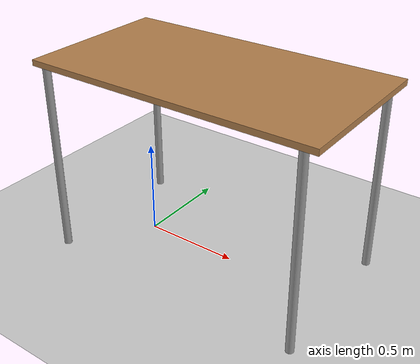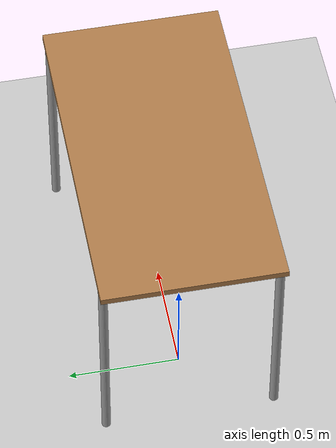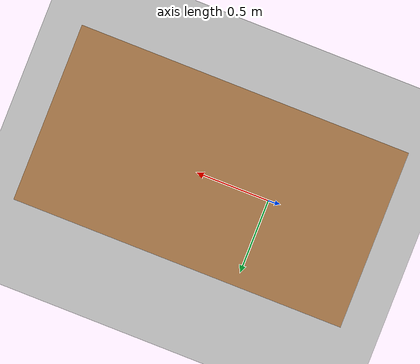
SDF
<?xml version="1.0" ?>
<sdf version="1.9">
  <world name="franka_table">
    <physics name="1ms" type="ignored">
      <max_step_size>0.001</max_step_size>
      <real_time_factor>1.0</real_time_factor>
    </physics>

    <plugin filename="gz-sim-physics-system" name="gz::sim::systems::Physics"></plugin>
    <plugin filename="gz-sim-scene-broadcaster-system" name="gz::sim::systems::SceneBroadcaster"></plugin>
    <plugin filename="gz-sim-user-commands-system" name="gz::sim::systems::UserCommands"></plugin>
    <plugin filename="gz-sim-imu-system" name="gz::sim::systems::Imu"></plugin>

    <plugin filename="gz-sim-sensors-system" name="gz::sim::systems::Sensors">
      <render_engine>ogre2</render_engine>
    </plugin>

    <scene>
      <ambient>0.35 0.35 0.35 1</ambient>
      <background>0.7 0.7 0.7 1</background>
    </scene>

    <light type="directional" name="sun">
      <cast_shadows>false</cast_shadows>
      <pose>0 0 10 0 0 0</pose>
      <diffuse>0.8 0.8 0.8 1</diffuse>
      <specular>0.2 0.2 0.2 1</specular>
      <attenuation>
        <range>1000</range>
        <constant>0.9</constant>
        <linear>0.01</linear>
        <quadratic>0.001</quadratic>
      </attenuation>
      <direction>-0.5 0.1 -0.9</direction>
    </light>

    <light type="directional" name="sun_fill">
      <cast_shadows>false</cast_shadows>
      <pose>0 0 10 0 0 0</pose>
      <diffuse>0.5 0.5 0.5 1</diffuse>
      <specular>0.1 0.1 0.1 1</specular>
      <attenuation>
        <range>1000</range>
        <constant>0.9</constant>
        <linear>0.01</linear>
        <quadratic>0.001</quadratic>
      </attenuation>
      <direction>0.5 0.1 -0.9</direction>
    </light>

    <model name="ground_plane">
      <static>true</static>
      <link name="link">
        <collision name="collision">
          <geometry>
            <plane>
              <normal>0 0 1</normal>
              <size>100 100</size>
            </plane>
          </geometry>
        </collision>
        <visual name="visual">
          <geometry>
            <plane>
              <normal>0 0 1</normal>
              <size>100 100</size>
            </plane>
        </geometry>
          <material>
            <ambient>0.8 0.8 0.8 1</ambient>
            <diffuse>0.8 0.8 0.8 1</diffuse>
            <specular>0.8 0.8 0.8 1</specular>
          </material>
        </visual>
      </link>
    </model>

    <include>
      <uri>model://table</uri>
      <name>table</name>
      <pose>0.4 0 0 0 0 0</pose>
    </include>

  </world>
</sdf>

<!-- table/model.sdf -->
<sdf version="1.5">
  <model name="table">
    <static>true</static>
    <link name="link">
      <collision name="surface">
        <pose>0 0 1.0 0 0 0</pose>
        <geometry>
          <box>
            <size>1.5 0.8 0.03</size>
          </box>
        </geometry>
        <surface>
          <friction>
            <ode>
              <mu>0.6</mu>
              <mu2>0.6</mu2>
            </ode>
          </friction>
        </surface>
      </collision>
      <visual name="visual1">
        <pose>0 0 1.0 0 0 0</pose>
        <geometry>
          <box>
            <size>1.5 0.8 0.03</size>
          </box>
        </geometry>
        <material>
          <script>
            <uri>model://media/materials/scripts/gazebo.material</uri>
            <name>Gazebo/Wood</name>
          </script>
        </material>
      </visual>
      <collision name="front_left_leg">
        <pose>0.68 0.38 0.5 0 0 0</pose>
        <geometry>
          <cylinder>
            <radius>0.02</radius>
            <length>1.0</length>
          </cylinder>
        </geometry>
      </collision>
      <visual name="front_left_leg">
        <pose>0.68 0.38 0.5 0 0 0</pose>
        <geometry>
          <cylinder>
            <radius>0.02</radius>
            <length>1.0</length>
          </cylinder>
        </geometry>
        <material>
          <script>
            <uri>model://media/materials/scripts/gazebo.material</uri>
            <name>Gazebo/Grey</name>
          </script>
        </material>
      </visual>
      <collision name="front_right_leg">
        <pose>0.68 -0.38 0.5 0 0 0</pose>
        <geometry>
          <cylinder>
            <radius>0.02</radius>
            <length>1.0</length>
          </cylinder>
        </geometry>
      </collision>
      <visual name="front_right_leg">
        <pose>0.68 -0.38 0.5 0 0 0</pose>
        <geometry>
          <cylinder>
            <radius>0.02</radius>
            <length>1.0</length>
          </cylinder>
        </geometry>
        <material>
          <script>
            <uri>model://media/materials/scripts/gazebo.material</uri>
            <name>Gazebo/Grey</name>
          </script>
        </material>
      </visual>
      <collision name="back_right_leg">
        <pose>-0.68 -0.38 0.5 0 0 0</pose>
        <geometry>
          <cylinder>
            <radius>0.02</radius>
            <length>1.0</length>
          </cylinder>
        </geometry>
      </collision>
      <visual name="back_right_leg">
        <pose>-0.68 -0.38 0.5 0 0 0</pose>
        <geometry>
          <cylinder>
            <radius>0.02</radius>
            <length>1.0</length>
          </cylinder>
        </geometry>
        <material>
          <script>
            <uri>model://media/materials/scripts/gazebo.material</uri>
            <name>Gazebo/Grey</name>
          </script>
        </material>
      </visual>
      <collision name="back_left_leg">
        <pose>-0.68 0.38 0.5 0 0 0</pose>
        <geometry>
          <cylinder>
            <radius>0.02</radius>
            <length>1.0</length>
          </cylinder>
        </geometry>
      </collision>
      <visual name="back_left_leg">
        <pose>-0.68 0.38 0.5 0 0 0</pose>
        <geometry>
          <cylinder>
            <radius>0.02</radius>
            <length>1.0</length>
          </cylinder>
        </geometry>
        <material>
          <script>
            <uri>model://media/materials/scripts/gazebo.material</uri>
            <name>Gazebo/Grey</name>
          </script>
        </material>
      </visual>
    </link>
  </model>
</sdf>
